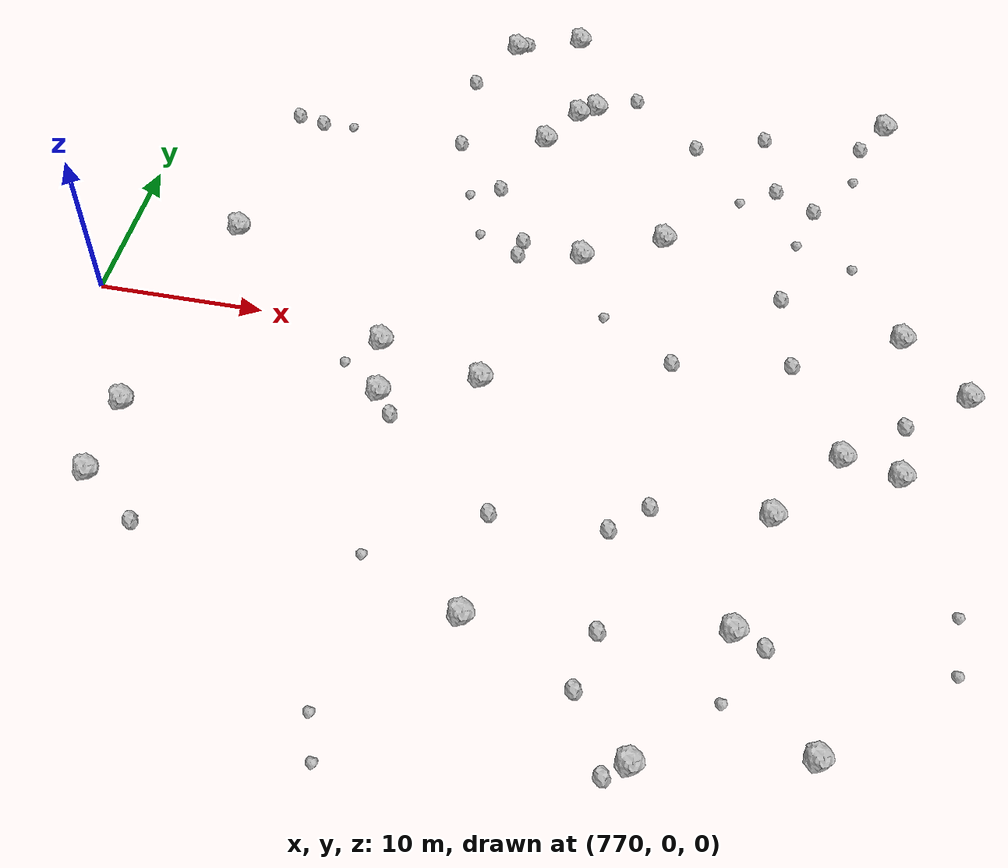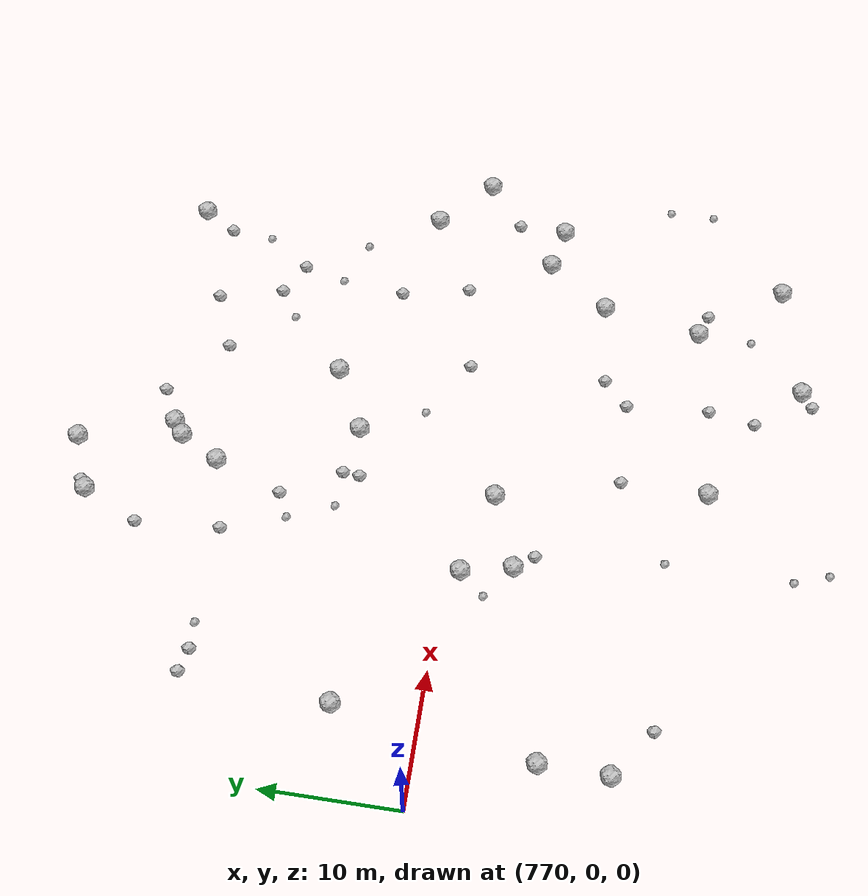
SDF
<sdf version="1.6">
 <world name="default">
  <include><uri>model://sun</uri></include>
  <model name="rock1_20_4">
   <include><uri>model://rock1</uri><pose>793.9536504467652 -2.7242989165579274 0.5 0 0 0</pose></include>
  </model>
  <model name="rock1_20_5">
   <include><uri>model://rock1</uri><pose>774.5275959524147 -8.274891523466387 0.5 0 0 0</pose></include>
  </model>
  <model name="rock1_20_6">
   <include><uri>model://rock1</uri><pose>774.4236570920701 -13.251813772563523 0.5 0 0 0</pose></include>
  </model>
  <model name="rock1_20_7">
   <include><uri>model://rock1</uri><pose>790.0335034631223 26.854969922533613 0.5 0 0 0</pose></include>
  </model>
  <model name="rock1_20_8">
   <include><uri>model://rock1</uri><pose>795.4219216578762 20.84493078971436 0.5 0 0 0</pose></include>
  </model>
  <model name="rock1_20_9">
   <include><uri>model://rock1</uri><pose>776.6262482536198 6.194079063329021 0.5 0 0 0</pose></include>
  </model>
  <model name="rock1_20_10">
   <include><uri>model://rock1</uri><pose>814.600881306469 -22.289604912477426 0.5 0 0 0</pose></include>
  </model>
  <model name="rock1_20_11">
   <include><uri>model://rock1</uri><pose>802.6463644134543 10.350370736816785 0.5 0 0 0</pose></include>
  </model>
  <model name="rock1_20_12">
   <include><uri>model://rock1</uri><pose>793.7599703542083 17.883137902552157 0.5 0 0 0</pose></include>
  </model>
  <model name="rock1_20_13">
   <include><uri>model://rock1</uri><pose>805.9328875999436 -24.25342859082447 0.5 0 0 0</pose></include>
  </model>
  <model name="rock1_20_14">
   <include><uri>model://rock1</uri><pose>797.916584188651 7.957219082139595 0.5 0 0 0</pose></include>
  </model>
  <model name="rock1_20_15">
   <include><uri>model://rock1</uri><pose>814.5209880921312 -4.315560386182362 0.5 0 0 0</pose></include>
  </model>
  <model name="rock1_20_16">
   <include><uri>model://rock1</uri><pose>817.3720925748244 4.958351749875135 0.5 0 0 0</pose></include>
  </model>
  <model name="rock1_20_17">
   <include><uri>model://rock1</uri><pose>817.7328930436042 -5.0015248788332585 0.5 0 0 0</pose></include>
  </model>
  <model name="rock1_20_18">
   <include><uri>model://rock1</uri><pose>788.5079779631998 -4.7978152040874775 0.5 0 0 0</pose></include>
  </model>
  <model name="rock1_20_19">
   <include><uri>model://rock1</uri><pose>794.168345905918 28.431222961331052 0.5 0 0 0</pose></include>
  </model>
  <model name="rock1_20_20">
   <include><uri>model://rock1</uri><pose>815.4442700657127 23.373031426292023 0.5 0 0 0</pose></include>
  </model>
  <model name="rock1_20_21">
   <include><uri>model://rock1</uri><pose>821.2701602287655 1.2661799707573387 0.5 0 0 0</pose></include>
  </model>
  <model name="rock1_20_22">
   <include><uri>model://rock1</uri><pose>796.4745938007793 21.61841285029935 0.5 0 0 0</pose></include>
  </model>
  <model name="rock1_20_23">
   <include><uri>model://rock1</uri><pose>787.6942245536418 -1.0985367511439499 0.5 0 0 0</pose></include>
  </model>
  <model name="rock1_20_24">
   <include><uri>model://rock1</uri><pose>811.1876044528044 -8.891826891965188 0.5 0 0 0</pose></include>
  </model>
  <model name="rock1_20_25">
   <include><uri>model://rock1</uri><pose>809.9330304904151 -16.192650259987545 0.5 0 0 0</pose></include>
  </model>
  <model name="rock1_20_26">
   <include><uri>model://rock1</uri><pose>796.3540405155177 -17.986811498265148 0.5 0 0 0</pose></include>
  </model>
  <model name="rock2_20_0">
   <include><uri>model://rock2</uri><pose>811.5713427984731 -16.832798325675405 0.3 0 0 0</pose></include>
  </model>
  <model name="rock2_20_1">
   <include><uri>model://rock2</uri><pose>813.9389270104604 20.98422698737255 0.3 0 0 0</pose></include>
  </model>
  <model name="rock2_20_2">
   <include><uri>model://rock2</uri><pose>788.4011622860722 16.48989546380217 0.3 0 0 0</pose></include>
  </model>
  <model name="rock2_20_3">
   <include><uri>model://rock2</uri><pose>804.7498630152073 -25.12052964293726 0.3 0 0 0</pose></include>
  </model>
  <model name="rock2_20_4">
   <include><uri>model://rock2</uri><pose>794.0407379407085 7.301680405585628 0.3 0 0 0</pose></include>
  </model>
  <model name="rock2_20_5">
   <include><uri>model://rock2</uri><pose>794.138873115066 8.534711807157791 0.3 0 0 0</pose></include>
  </model>
  <model name="rock2_20_6">
   <include><uri>model://rock2</uri><pose>804.4461124443567 0.5856570509714523 0.3 0 0 0</pose></include>
  </model>
  <model name="rock2_20_7">
   <include><uri>model://rock2</uri><pose>787.9864473151173 22.69658883675271 0.3 0 0 0</pose></include>
  </model>
  <model name="rock2_20_8">
   <include><uri>model://rock2</uri><pose>807.7621327680629 20.714939720761713 0.3 0 0 0</pose></include>
  </model>
  <model name="rock2_20_9">
   <include><uri>model://rock2</uri><pose>791.8147594302061 12.81390660324761 0.3 0 0 0</pose></include>
  </model>
  <model name="rock2_20_10">
   <include><uri>model://rock2</uri><pose>802.6525522615328 -20.95666723617328 0.3 0 0 0</pose></include>
  </model>
  <model name="rock2_20_11">
   <include><uri>model://rock2</uri><pose>803.2410293927139 -17.538737337034856 0.3 0 0 0</pose></include>
  </model>
  <model name="rock2_20_12">
   <include><uri>model://rock2</uri><pose>799.0013156836053 22.903143735578475 0.3 0 0 0</pose></include>
  </model>
  <model name="rock2_20_13">
   <include><uri>model://rock2</uri><pose>817.7960619369869 -1.4505952737284709 0.3 0 0 0</pose></include>
  </model>
  <model name="rock2_20_14">
   <include><uri>model://rock2</uri><pose>779.0247781660185 16.62126224597875 0.3 0 0 0</pose></include>
  </model>
  <model name="rock2_20_15">
   <include><uri>model://rock2</uri><pose>804.7109010376705 -9.583794344600406 0.3 0 0 0</pose></include>
  </model>
  <model name="rock2_20_16">
   <include><uri>model://rock2</uri><pose>811.2292616053752 1.7133513014338142 0.3 0 0 0</pose></include>
  </model>
  <model name="rock2_20_17">
   <include><uri>model://rock2</uri><pose>802.781380553047 -11.414165728530254 0.3 0 0 0</pose></include>
  </model>
  <model name="rock2_20_18">
   <include><uri>model://rock2</uri><pose>777.9461208150753 -15.843694589394348 0.3 0 0 0</pose></include>
  </model>
  <model name="rock2_20_19">
   <include><uri>model://rock2</uri><pose>789.5423608016963 -6.208611487194435 0.3 0 0 0</pose></include>
  </model>
  <model name="rock2_20_20">
   <include><uri>model://rock2</uri><pose>803.4799438374577 19.041913910418536 0.3 0 0 0</pose></include>
  </model>
  <model name="rock2_20_21">
   <include><uri>model://rock2</uri><pose>777.2877629395433 17.028060165161406 0.3 0 0 0</pose></include>
  </model>
  <model name="rock2_20_22">
   <include><uri>model://rock2</uri><pose>811.4323606188514 14.61937428569427 0.3 0 0 0</pose></include>
  </model>
  <model name="rock2_20_23">
   <include><uri>model://rock2</uri><pose>790.6942348023459 27.356988737629052 0.3 0 0 0</pose></include>
  </model>
  <model name="rock2_20_24">
   <include><uri>model://rock2</uri><pose>796.3789642641623 -11.652524163233274 0.3 0 0 0</pose></include>
  </model>
  <model name="rock2_20_25">
   <include><uri>model://rock2</uri><pose>808.9656627902069 15.983998249120269 0.3 0 0 0</pose></include>
  </model>
  <model name="rock2_20_26">
   <include><uri>model://rock2</uri><pose>810.136626594217 6.763918784738713 0.3 0 0 0</pose></include>
  </model>
  <model name="rock3_20_0">
   <include><uri>model://rock3</uri><pose>820.9490571919729 -16.532996379843794 0.2 0 0 0</pose></include>
  </model>
  <model name="rock3_20_1">
   <include><uri>model://rock3</uri><pose>820.917107209437 -13.18069138269086 0.2 0 0 0</pose></include>
  </model>
  <model name="rock3_20_2">
   <include><uri>model://rock3</uri><pose>786.0040804406697 -2.9993982358257725 0.2 0 0 0</pose></include>
  </model>
  <model name="rock3_20_3">
   <include><uri>model://rock3</uri><pose>806.8106412014818 14.540689280165424 0.2 0 0 0</pose></include>
  </model>
  <model name="rock3_20_4">
   <include><uri>model://rock3</uri><pose>814.1159140006712 10.06880620203615 0.2 0 0 0</pose></include>
  </model>
  <model name="rock3_20_5">
   <include><uri>model://rock3</uri><pose>791.2321197331884 -27.11436603037804 0.2 0 0 0</pose></include>
  </model>
  <model name="rock3_20_6">
   <include><uri>model://rock3</uri><pose>790.3531157663174 -24.630092208891273 0.2 0 0 0</pose></include>
  </model>
  <model name="rock3_20_7">
   <include><uri>model://rock3</uri><pose>813.6808637587548 17.81411040085044 0.2 0 0 0</pose></include>
  </model>
  <model name="rock3_20_8">
   <include><uri>model://rock3</uri><pose>810.6277814025833 11.45583138682219 0.2 0 0 0</pose></include>
  </model>
  <model name="rock3_20_9">
   <include><uri>model://rock3</uri><pose>790.4308893593344 -15.442445872708126 0.2 0 0 0</pose></include>
  </model>
  <model name="rock3_20_10">
   <include><uri>model://rock3</uri><pose>800.0230113082648 3.305575483383592 0.2 0 0 0</pose></include>
  </model>
  <model name="rock3_20_11">
   <include><uri>model://rock3</uri><pose>809.7596594735393 -20.276902554654292 0.2 0 0 0</pose></include>
  </model>
  <model name="rock3_20_12">
   <include><uri>model://rock3</uri><pose>791.3796312985986 8.612259776733517 0.2 0 0 0</pose></include>
  </model>
  <model name="rock3_20_13">
   <include><uri>model://rock3</uri><pose>781.0033821845748 16.653113154729652 0.2 0 0 0</pose></include>
  </model>
  <model name="rock3_20_14">
   <include><uri>model://rock3</uri><pose>789.9754351659542 11.927141898250909 0.2 0 0 0</pose></include>
  </model>
 </world>
</sdf>
